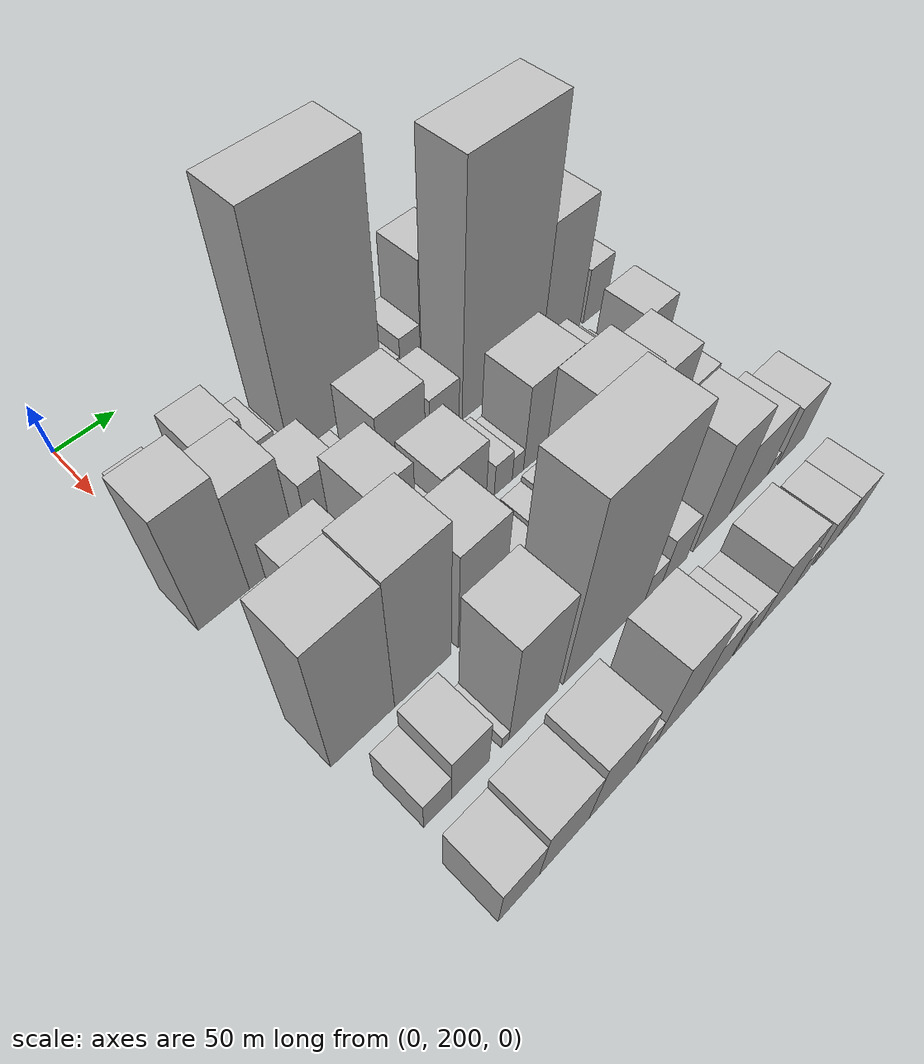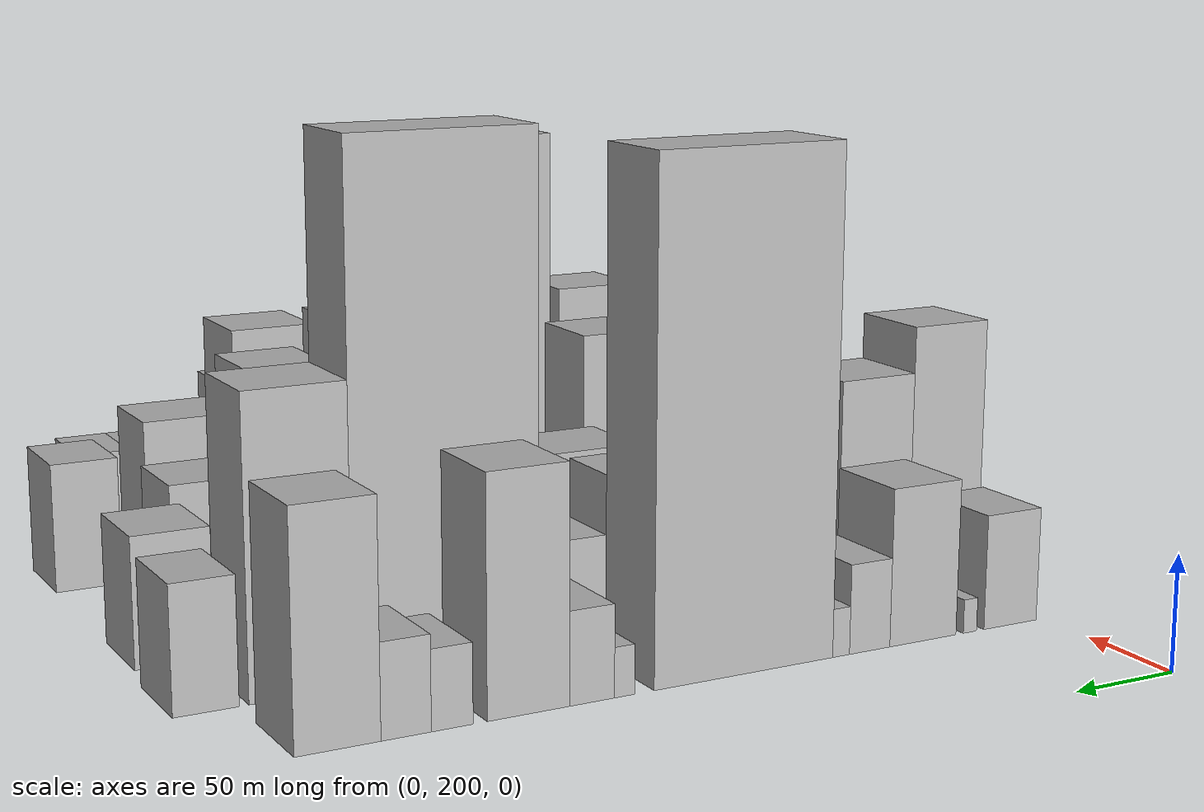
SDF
<sdf version="1.6">
 <world name="default">
  <model name="building_33">
   <static>1</static>
   <pose>100.0000 218.6836 0 0.000000 0.000000 0.000000</pose>
   <link name="link">
    <pose>0 0 25.50 0 0 0</pose>
    <collision name="collision"><geometry><box><size>40.0000 28.7521 51.0000</size></box></geometry></collision>
    <visual name="visual">
     <cast_shadows>0</cast_shadows>
     <geometry><box><size>40.0000 28.7521 51.0000</size></box></geometry>
     <material>
      <script>
       <uri>model://HANNAS_wall/materials/scripts</uri>
       <uri>model://HANNAS_wall/materials/textures</uri>
       <name>vrc/HANNAS_wall</name>
      </script>
     </material>
    </visual>
   </link>
  </model>
  <model name="building_34">
   <static>1</static>
   <pose>100.0000 240.6282 0 0.000000 0.000000 0.000000</pose>
   <link name="link">
    <pose>0 0 7.50 0 0 0</pose>
    <collision name="collision"><geometry><box><size>40.0000 7.1371 15.0000</size></box></geometry></collision>
    <visual name="visual">
     <cast_shadows>0</cast_shadows>
     <geometry><box><size>40.0000 7.1371 15.0000</size></box></geometry>
     <material>
      <script>
       <uri>model://HANNAS_wall/materials/scripts</uri>
       <uri>model://HANNAS_wall/materials/textures</uri>
       <name>vrc/HANNAS_wall</name>
      </script>
     </material>
    </visual>
   </link>
  </model>
  <model name="building_35">
   <static>1</static>
   <pose>100.0000 265.6175 0 0.000000 0.000000 0.000000</pose>
   <link name="link">
    <pose>0 0 34.50 0 0 0</pose>
    <collision name="collision"><geometry><box><size>40.0000 34.8416 69.0000</size></box></geometry></collision>
    <visual name="visual">
     <cast_shadows>0</cast_shadows>
     <geometry><box><size>40.0000 34.8416 69.0000</size></box></geometry>
     <material>
      <script>
       <uri>model://HANNAS_wall/materials/scripts</uri>
       <uri>model://HANNAS_wall/materials/textures</uri>
       <name>vrc/HANNAS_wall</name>
      </script>
     </material>
    </visual>
   </link>
  </model>
  <model name="building_36">
   <static>1</static>
   <pose>100.0000 293.3872 0 0.000000 0.000000 0.000000</pose>
   <link name="link">
    <pose>0 0 19.50 0 0 0</pose>
    <collision name="collision"><geometry><box><size>40.0000 20.6977 39.0000</size></box></geometry></collision>
    <visual name="visual">
     <cast_shadows>0</cast_shadows>
     <geometry><box><size>40.0000 20.6977 39.0000</size></box></geometry>
     <material>
      <script>
       <uri>model://HANNAS_wall/materials/scripts</uri>
       <uri>model://HANNAS_wall/materials/textures</uri>
       <name>vrc/HANNAS_wall</name>
      </script>
     </material>
    </visual>
   </link>
  </model>
  <model name="building_37">
   <static>1</static>
   <pose>100.0000 307.9839 0 0.000000 0.000000 0.000000</pose>
   <link name="link">
    <pose>0 0 10.50 0 0 0</pose>
    <collision name="collision"><geometry><box><size>40.0000 8.4957 21.0000</size></box></geometry></collision>
    <visual name="visual">
     <cast_shadows>0</cast_shadows>
     <geometry><box><size>40.0000 8.4957 21.0000</size></box></geometry>
     <material>
      <script>
       <uri>model://HANNAS_wall/materials/scripts</uri>
       <uri>model://HANNAS_wall/materials/textures</uri>
       <name>vrc/HANNAS_wall</name>
      </script>
     </material>
    </visual>
   </link>
  </model>
  <model name="building_38">
   <static>1</static>
   <pose>100.0000 355.2937 0 0.000000 0.000000 0.000000</pose>
   <link name="link">
    <pose>0 0 108.00 0 0 0</pose>
    <collision name="collision"><geometry><box><size>40.0000 86.1239 216.0000</size></box></geometry></collision>
    <visual name="visual">
     <cast_shadows>0</cast_shadows>
     <geometry><box><size>40.0000 86.1239 216.0000</size></box></geometry>
     <material>
      <script>
       <uri>model://HANNAS_wall/materials/scripts</uri>
       <uri>model://HANNAS_wall/materials/textures</uri>
       <name>vrc/HANNAS_wall</name>
      </script>
     </material>
    </visual>
   </link>
  </model>
  <model name="building_39">
   <static>1</static>
   <pose>100.0000 411.9380 0 0.000000 0.000000 0.000000</pose>
   <link name="link">
    <pose>0 0 10.50 0 0 0</pose>
    <collision name="collision"><geometry><box><size>40.0000 9.1647 21.0000</size></box></geometry></collision>
    <visual name="visual">
     <cast_shadows>0</cast_shadows>
     <geometry><box><size>40.0000 9.1647 21.0000</size></box></geometry>
     <material>
      <script>
       <uri>model://HANNAS_wall/materials/scripts</uri>
       <uri>model://HANNAS_wall/materials/textures</uri>
       <name>vrc/HANNAS_wall</name>
      </script>
     </material>
    </visual>
   </link>
  </model>
  <model name="building_40">
   <static>1</static>
   <pose>100.0000 426.6160 0 0.000000 0.000000 0.000000</pose>
   <link name="link">
    <pose>0 0 19.50 0 0 0</pose>
    <collision name="collision"><geometry><box><size>40.0000 20.1914 39.0000</size></box></geometry></collision>
    <visual name="visual">
     <cast_shadows>0</cast_shadows>
     <geometry><box><size>40.0000 20.1914 39.0000</size></box></geometry>
     <material>
      <script>
       <uri>model://HANNAS_wall/materials/scripts</uri>
       <uri>model://HANNAS_wall/materials/textures</uri>
       <name>vrc/HANNAS_wall</name>
      </script>
     </material>
    </visual>
   </link>
  </model>
  <model name="building_41">
   <static>1</static>
   <pose>100.0000 454.6292 0 0.000000 0.000000 0.000000</pose>
   <link name="link">
    <pose>0 0 49.50 0 0 0</pose>
    <collision name="collision"><geometry><box><size>40.0000 35.8349 99.0000</size></box></geometry></collision>
    <visual name="visual">
     <cast_shadows>0</cast_shadows>
     <geometry><box><size>40.0000 35.8349 99.0000</size></box></geometry>
     <material>
      <script>
       <uri>model://HANNAS_wall/materials/scripts</uri>
       <uri>model://HANNAS_wall/materials/textures</uri>
       <name>vrc/HANNAS_wall</name>
      </script>
     </material>
    </visual>
   </link>
  </model>
  <model name="building_42">
   <static>1</static>
   <pose>100.0000 487.3289 0 0.000000 0.000000 0.000000</pose>
   <link name="link">
    <pose>0 0 16.50 0 0 0</pose>
    <collision name="collision"><geometry><box><size>40.0000 17.5645 33.0000</size></box></geometry></collision>
    <visual name="visual">
     <cast_shadows>0</cast_shadows>
     <geometry><box><size>40.0000 17.5645 33.0000</size></box></geometry>
     <material>
      <script>
       <uri>model://HANNAS_wall/materials/scripts</uri>
       <uri>model://HANNAS_wall/materials/textures</uri>
       <name>vrc/HANNAS_wall</name>
      </script>
     </material>
    </visual>
   </link>
  </model>
  <model name="building_43">
   <static>1</static>
   <pose>100.0000 506.4956 0 0.000000 0.000000 0.000000</pose>
   <link name="link">
    <pose>0 0 19.50 0 0 0</pose>
    <collision name="collision"><geometry><box><size>40.0000 20.7688 39.0000</size></box></geometry></collision>
    <visual name="visual">
     <cast_shadows>0</cast_shadows>
     <geometry><box><size>40.0000 20.7688 39.0000</size></box></geometry>
     <material>
      <script>
       <uri>model://HANNAS_wall/materials/scripts</uri>
       <uri>model://HANNAS_wall/materials/textures</uri>
       <name>vrc/HANNAS_wall</name>
      </script>
     </material>
    </visual>
   </link>
  </model>
  <model name="building_44">
   <static>1</static>
   <pose>100.0000 534.3152 0 0.000000 0.000000 0.000000</pose>
   <link name="link">
    <pose>0 0 48.00 0 0 0</pose>
    <collision name="collision"><geometry><box><size>40.0000 34.8703 96.0000</size></box></geometry></collision>
    <visual name="visual">
     <cast_shadows>0</cast_shadows>
     <geometry><box><size>40.0000 34.8703 96.0000</size></box></geometry>
     <material>
      <script>
       <uri>model://HANNAS_wall/materials/scripts</uri>
       <uri>model://HANNAS_wall/materials/textures</uri>
       <name>vrc/HANNAS_wall</name>
      </script>
     </material>
    </visual>
   </link>
  </model>
  <model name="building_88">
   <static>1</static>
   <pose>160.0000 209.4700 0 0.000000 0.000000 0.000000</pose>
   <link name="link">
    <pose>0 0 61.50 0 0 0</pose>
    <collision name="collision"><geometry><box><size>40.0000 39.6914 123.0000</size></box></geometry></collision>
    <visual name="visual">
     <cast_shadows>0</cast_shadows>
     <geometry><box><size>40.0000 39.6914 123.0000</size></box></geometry>
     <material>
      <script>
       <uri>model://HANNAS_wall/materials/scripts</uri>
       <uri>model://HANNAS_wall/materials/textures</uri>
       <name>vrc/HANNAS_wall</name>
      </script>
     </material>
    </visual>
   </link>
  </model>
  <model name="building_89">
   <static>1</static>
   <pose>160.0000 248.7775 0 0.000000 0.000000 0.000000</pose>
   <link name="link">
    <pose>0 0 51.00 0 0 0</pose>
    <collision name="collision"><geometry><box><size>40.0000 38.9235 102.0000</size></box></geometry></collision>
    <visual name="visual">
     <cast_shadows>0</cast_shadows>
     <geometry><box><size>40.0000 38.9235 102.0000</size></box></geometry>
     <material>
      <script>
       <uri>model://HANNAS_wall/materials/scripts</uri>
       <uri>model://HANNAS_wall/materials/textures</uri>
       <name>vrc/HANNAS_wall</name>
      </script>
     </material>
    </visual>
   </link>
  </model>
  <model name="building_90">
   <static>1</static>
   <pose>160.0000 294.4187 0 0.000000 0.000000 0.000000</pose>
   <link name="link">
    <pose>0 0 31.50 0 0 0</pose>
    <collision name="collision"><geometry><box><size>40.0000 32.3589 63.0000</size></box></geometry></collision>
    <visual name="visual">
     <cast_shadows>0</cast_shadows>
     <geometry><box><size>40.0000 32.3589 63.0000</size></box></geometry>
     <material>
      <script>
       <uri>model://HANNAS_wall/materials/scripts</uri>
       <uri>model://HANNAS_wall/materials/textures</uri>
       <name>vrc/HANNAS_wall</name>
      </script>
     </material>
    </visual>
   </link>
  </model>
  <model name="building_91">
   <static>1</static>
   <pose>160.0000 325.4653 0 0.000000 0.000000 0.000000</pose>
   <link name="link">
    <pose>0 0 15.00 0 0 0</pose>
    <collision name="collision"><geometry><box><size>40.0000 17.7343 30.0000</size></box></geometry></collision>
    <visual name="visual">
     <cast_shadows>0</cast_shadows>
     <geometry><box><size>40.0000 17.7343 30.0000</size></box></geometry>
     <material>
      <script>
       <uri>model://HANNAS_wall/materials/scripts</uri>
       <uri>model://HANNAS_wall/materials/textures</uri>
       <name>vrc/HANNAS_wall</name>
      </script>
     </material>
    </visual>
   </link>
  </model>
  <model name="building_92">
   <static>1</static>
   <pose>160.0000 361.8313 0 0.000000 0.000000 0.000000</pose>
   <link name="link">
    <pose>0 0 36.00 0 0 0</pose>
    <collision name="collision"><geometry><box><size>40.0000 42.9977 72.0000</size></box></geometry></collision>
    <visual name="visual">
     <cast_shadows>0</cast_shadows>
     <geometry><box><size>40.0000 42.9977 72.0000</size></box></geometry>
     <material>
      <script>
       <uri>model://HANNAS_wall/materials/scripts</uri>
       <uri>model://HANNAS_wall/materials/textures</uri>
       <name>vrc/HANNAS_wall</name>
      </script>
     </material>
    </visual>
   </link>
  </model>
  <model name="building_93">
   <static>1</static>
   <pose>160.0000 401.6939 0 0.000000 0.000000 0.000000</pose>
   <link name="link">
    <pose>0 0 24.00 0 0 0</pose>
    <collision name="collision"><geometry><box><size>40.0000 28.7275 48.0000</size></box></geometry></collision>
    <visual name="visual">
     <cast_shadows>0</cast_shadows>
     <geometry><box><size>40.0000 28.7275 48.0000</size></box></geometry>
     <material>
      <script>
       <uri>model://HANNAS_wall/materials/scripts</uri>
       <uri>model://HANNAS_wall/materials/textures</uri>
       <name>vrc/HANNAS_wall</name>
      </script>
     </material>
    </visual>
   </link>
  </model>
  <model name="building_94">
   <static>1</static>
   <pose>160.0000 461.1243 0 0.000000 0.000000 0.000000</pose>
   <link name="link">
    <pose>0 0 111.00 0 0 0</pose>
    <collision name="collision"><geometry><box><size>40.0000 84.1333 222.0000</size></box></geometry></collision>
    <visual name="visual">
     <cast_shadows>0</cast_shadows>
     <geometry><box><size>40.0000 84.1333 222.0000</size></box></geometry>
     <material>
      <script>
       <uri>model://HANNAS_wall/materials/scripts</uri>
       <uri>model://HANNAS_wall/materials/textures</uri>
       <name>vrc/HANNAS_wall</name>
      </script>
     </material>
    </visual>
   </link>
  </model>
  <model name="building_95">
   <static>1</static>
   <pose>160.0000 525.2497 0 0.000000 0.000000 0.000000</pose>
   <link name="link">
    <pose>0 0 63.00 0 0 0</pose>
    <collision name="collision"><geometry><box><size>40.0000 44.1175 126.0000</size></box></geometry></collision>
    <visual name="visual">
     <cast_shadows>0</cast_shadows>
     <geometry><box><size>40.0000 44.1175 126.0000</size></box></geometry>
     <material>
      <script>
       <uri>model://HANNAS_wall/materials/scripts</uri>
       <uri>model://HANNAS_wall/materials/textures</uri>
       <name>vrc/HANNAS_wall</name>
      </script>
     </material>
    </visual>
   </link>
  </model>
  <model name="building_96">
   <static>1</static>
   <pose>160.0000 564.9026 0 0.000000 0.000000 0.000000</pose>
   <link name="link">
    <pose>0 0 27.00 0 0 0</pose>
    <collision name="collision"><geometry><box><size>40.0000 27.1882 54.0000</size></box></geometry></collision>
    <visual name="visual">
     <cast_shadows>0</cast_shadows>
     <geometry><box><size>40.0000 27.1882 54.0000</size></box></geometry>
     <material>
      <script>
       <uri>model://HANNAS_wall/materials/scripts</uri>
       <uri>model://HANNAS_wall/materials/textures</uri>
       <name>vrc/HANNAS_wall</name>
      </script>
     </material>
    </visual>
   </link>
  </model>
  <model name="building_142">
   <static>1</static>
   <pose>220.0000 221.8483 0 0.000000 0.000000 0.000000</pose>
   <link name="link">
    <pose>0 0 9.00 0 0 0</pose>
    <collision name="collision"><geometry><box><size>40.0000 8.2182 18.0000</size></box></geometry></collision>
    <visual name="visual">
     <cast_shadows>0</cast_shadows>
     <geometry><box><size>40.0000 8.2182 18.0000</size></box></geometry>
     <material>
      <script>
       <uri>model://HANNAS_wall/materials/scripts</uri>
       <uri>model://HANNAS_wall/materials/textures</uri>
       <name>vrc/HANNAS_wall</name>
      </script>
     </material>
    </visual>
   </link>
  </model>
  <model name="building_143">
   <static>1</static>
   <pose>220.0000 254.0555 0 0.000000 0.000000 0.000000</pose>
   <link name="link">
    <pose>0 0 37.50 0 0 0</pose>
    <collision name="collision"><geometry><box><size>40.0000 42.1961 75.0000</size></box></geometry></collision>
    <visual name="visual">
     <cast_shadows>0</cast_shadows>
     <geometry><box><size>40.0000 42.1961 75.0000</size></box></geometry>
     <material>
      <script>
       <uri>model://HANNAS_wall/materials/scripts</uri>
       <uri>model://HANNAS_wall/materials/textures</uri>
       <name>vrc/HANNAS_wall</name>
      </script>
     </material>
    </visual>
   </link>
  </model>
  <model name="building_144">
   <static>1</static>
   <pose>220.0000 300.3810 0 0.000000 0.000000 0.000000</pose>
   <link name="link">
    <pose>0 0 54.00 0 0 0</pose>
    <collision name="collision"><geometry><box><size>40.0000 34.4549 108.0000</size></box></geometry></collision>
    <visual name="visual">
     <cast_shadows>0</cast_shadows>
     <geometry><box><size>40.0000 34.4549 108.0000</size></box></geometry>
     <material>
      <script>
       <uri>model://HANNAS_wall/materials/scripts</uri>
       <uri>model://HANNAS_wall/materials/textures</uri>
       <name>vrc/HANNAS_wall</name>
      </script>
     </material>
    </visual>
   </link>
  </model>
  <model name="building_145">
   <static>1</static>
   <pose>220.0000 328.3311 0 0.000000 0.000000 0.000000</pose>
   <link name="link">
    <pose>0 0 21.00 0 0 0</pose>
    <collision name="collision"><geometry><box><size>40.0000 21.4453 42.0000</size></box></geometry></collision>
    <visual name="visual">
     <cast_shadows>0</cast_shadows>
     <geometry><box><size>40.0000 21.4453 42.0000</size></box></geometry>
     <material>
      <script>
       <uri>model://HANNAS_wall/materials/scripts</uri>
       <uri>model://HANNAS_wall/materials/textures</uri>
       <name>vrc/HANNAS_wall</name>
      </script>
     </material>
    </visual>
   </link>
  </model>
  <model name="building_146">
   <static>1</static>
   <pose>220.0000 359.7139 0 0.000000 0.000000 0.000000</pose>
   <link name="link">
    <pose>0 0 34.50 0 0 0</pose>
    <collision name="collision"><geometry><box><size>40.0000 41.3204 69.0000</size></box></geometry></collision>
    <visual name="visual">
     <cast_shadows>0</cast_shadows>
     <geometry><box><size>40.0000 41.3204 69.0000</size></box></geometry>
     <material>
      <script>
       <uri>model://HANNAS_wall/materials/scripts</uri>
       <uri>model://HANNAS_wall/materials/textures</uri>
       <name>vrc/HANNAS_wall</name>
      </script>
     </material>
    </visual>
   </link>
  </model>
  <model name="building_147">
   <static>1</static>
   <pose>220.0000 397.2193 0 0.000000 0.000000 0.000000</pose>
   <link name="link">
    <pose>0 0 16.50 0 0 0</pose>
    <collision name="collision"><geometry><box><size>40.0000 17.6904 33.0000</size></box></geometry></collision>
    <visual name="visual">
     <cast_shadows>0</cast_shadows>
     <geometry><box><size>40.0000 17.6904 33.0000</size></box></geometry>
     <material>
      <script>
       <uri>model://HANNAS_wall/materials/scripts</uri>
       <uri>model://HANNAS_wall/materials/textures</uri>
       <name>vrc/HANNAS_wall</name>
      </script>
     </material>
    </visual>
   </link>
  </model>
  <model name="building_148">
   <static>1</static>
   <pose>220.0000 411.6757 0 0.000000 0.000000 0.000000</pose>
   <link name="link">
    <pose>0 0 12.00 0 0 0</pose>
    <collision name="collision"><geometry><box><size>40.0000 11.2225 24.0000</size></box></geometry></collision>
    <visual name="visual">
     <cast_shadows>0</cast_shadows>
     <geometry><box><size>40.0000 11.2225 24.0000</size></box></geometry>
     <material>
      <script>
       <uri>model://HANNAS_wall/materials/scripts</uri>
       <uri>model://HANNAS_wall/materials/textures</uri>
       <name>vrc/HANNAS_wall</name>
      </script>
     </material>
    </visual>
   </link>
  </model>
  <model name="building_149">
   <static>1</static>
   <pose>220.0000 442.6107 0 0.000000 0.000000 0.000000</pose>
   <link name="link">
    <pose>0 0 43.50 0 0 0</pose>
    <collision name="collision"><geometry><box><size>40.0000 50.6474 87.0000</size></box></geometry></collision>
    <visual name="visual">
     <cast_shadows>0</cast_shadows>
     <geometry><box><size>40.0000 50.6474 87.0000</size></box></geometry>
     <material>
      <script>
       <uri>model://HANNAS_wall/materials/scripts</uri>
       <uri>model://HANNAS_wall/materials/textures</uri>
       <name>vrc/HANNAS_wall</name>
      </script>
     </material>
    </visual>
   </link>
  </model>
  <model name="building_150">
   <static>1</static>
   <pose>220.0000 484.1949 0 0.000000 0.000000 0.000000</pose>
   <link name="link">
    <pose>0 0 28.50 0 0 0</pose>
    <collision name="collision"><geometry><box><size>40.0000 32.5212 57.0000</size></box></geometry></collision>
    <visual name="visual">
     <cast_shadows>0</cast_shadows>
     <geometry><box><size>40.0000 32.5212 57.0000</size></box></geometry>
     <material>
      <script>
       <uri>model://HANNAS_wall/materials/scripts</uri>
       <uri>model://HANNAS_wall/materials/textures</uri>
       <name>vrc/HANNAS_wall</name>
      </script>
     </material>
    </visual>
   </link>
  </model>
  <model name="building_151">
   <static>1</static>
   <pose>220.0000 509.6983 0 0.000000 0.000000 0.000000</pose>
   <link name="link">
    <pose>0 0 18.00 0 0 0</pose>
    <collision name="collision"><geometry><box><size>40.0000 18.4855 36.0000</size></box></geometry></collision>
    <visual name="visual">
     <cast_shadows>0</cast_shadows>
     <geometry><box><size>40.0000 18.4855 36.0000</size></box></geometry>
     <material>
      <script>
       <uri>model://HANNAS_wall/materials/scripts</uri>
       <uri>model://HANNAS_wall/materials/textures</uri>
       <name>vrc/HANNAS_wall</name>
      </script>
     </material>
    </visual>
   </link>
  </model>
  <model name="building_152">
   <static>1</static>
   <pose>220.0000 524.8122 0 0.000000 0.000000 0.000000</pose>
   <link name="link">
    <pose>0 0 12.00 0 0 0</pose>
    <collision name="collision"><geometry><box><size>40.0000 11.7424 24.0000</size></box></geometry></collision>
    <visual name="visual">
     <cast_shadows>0</cast_shadows>
     <geometry><box><size>40.0000 11.7424 24.0000</size></box></geometry>
     <material>
      <script>
       <uri>model://HANNAS_wall/materials/scripts</uri>
       <uri>model://HANNAS_wall/materials/textures</uri>
       <name>vrc/HANNAS_wall</name>
      </script>
     </material>
    </visual>
   </link>
  </model>
  <model name="building_153">
   <static>1</static>
   <pose>220.0000 557.7798 0 0.000000 0.000000 0.000000</pose>
   <link name="link">
    <pose>0 0 28.50 0 0 0</pose>
    <collision name="collision"><geometry><box><size>40.0000 34.1929 57.0000</size></box></geometry></collision>
    <visual name="visual">
     <cast_shadows>0</cast_shadows>
     <geometry><box><size>40.0000 34.1929 57.0000</size></box></geometry>
     <material>
      <script>
       <uri>model://HANNAS_wall/materials/scripts</uri>
       <uri>model://HANNAS_wall/materials/textures</uri>
       <name>vrc/HANNAS_wall</name>
      </script>
     </material>
    </visual>
   </link>
  </model>
  <model name="building_194">
   <static>1</static>
   <pose>280.0000 216.1679 0 0.000000 0.000000 0.000000</pose>
   <link name="link">
    <pose>0 0 73.50 0 0 0</pose>
    <collision name="collision"><geometry><box><size>40.0000 49.0599 147.0000</size></box></geometry></collision>
    <visual name="visual">
     <cast_shadows>0</cast_shadows>
     <geometry><box><size>40.0000 49.0599 147.0000</size></box></geometry>
     <material>
      <script>
       <uri>model://HANNAS_wall/materials/scripts</uri>
       <uri>model://HANNAS_wall/materials/textures</uri>
       <name>vrc/HANNAS_wall</name>
      </script>
     </material>
    </visual>
   </link>
  </model>
  <model name="building_195">
   <static>1</static>
   <pose>280.0000 263.8542 0 0.000000 0.000000 0.000000</pose>
   <link name="link">
    <pose>0 0 75.00 0 0 0</pose>
    <collision name="collision"><geometry><box><size>40.0000 46.3127 150.0000</size></box></geometry></collision>
    <visual name="visual">
     <cast_shadows>0</cast_shadows>
     <geometry><box><size>40.0000 46.3127 150.0000</size></box></geometry>
     <material>
      <script>
       <uri>model://HANNAS_wall/materials/scripts</uri>
       <uri>model://HANNAS_wall/materials/textures</uri>
       <name>vrc/HANNAS_wall</name>
      </script>
     </material>
    </visual>
   </link>
  </model>
  <model name="building_196">
   <static>1</static>
   <pose>280.0000 313.0113 0 0.000000 0.000000 0.000000</pose>
   <link name="link">
    <pose>0 0 54.00 0 0 0</pose>
    <collision name="collision"><geometry><box><size>40.0000 40.0014 108.0000</size></box></geometry></collision>
    <visual name="visual">
     <cast_shadows>0</cast_shadows>
     <geometry><box><size>40.0000 40.0014 108.0000</size></box></geometry>
     <material>
      <script>
       <uri>model://HANNAS_wall/materials/scripts</uri>
       <uri>model://HANNAS_wall/materials/textures</uri>
       <name>vrc/HANNAS_wall</name>
      </script>
     </material>
    </visual>
   </link>
  </model>
  <model name="building_197">
   <static>1</static>
   <pose>280.0000 346.7867 0 0.000000 0.000000 0.000000</pose>
   <link name="link">
    <pose>0 0 25.50 0 0 0</pose>
    <collision name="collision"><geometry><box><size>40.0000 27.5494 51.0000</size></box></geometry></collision>
    <visual name="visual">
     <cast_shadows>0</cast_shadows>
     <geometry><box><size>40.0000 27.5494 51.0000</size></box></geometry>
     <material>
      <script>
       <uri>model://HANNAS_wall/materials/scripts</uri>
       <uri>model://HANNAS_wall/materials/textures</uri>
       <name>vrc/HANNAS_wall</name>
      </script>
     </material>
    </visual>
   </link>
  </model>
  <model name="building_198">
   <static>1</static>
   <pose>280.0000 363.6494 0 0.000000 0.000000 0.000000</pose>
   <link name="link">
    <pose>0 0 7.50 0 0 0</pose>
    <collision name="collision"><geometry><box><size>40.0000 6.1761 15.0000</size></box></geometry></collision>
    <visual name="visual">
     <cast_shadows>0</cast_shadows>
     <geometry><box><size>40.0000 6.1761 15.0000</size></box></geometry>
     <material>
      <script>
       <uri>model://HANNAS_wall/materials/scripts</uri>
       <uri>model://HANNAS_wall/materials/textures</uri>
       <name>vrc/HANNAS_wall</name>
      </script>
     </material>
    </visual>
   </link>
  </model>
  <model name="building_199">
   <static>1</static>
   <pose>280.0000 380.2682 0 0.000000 0.000000 0.000000</pose>
   <link name="link">
    <pose>0 0 18.00 0 0 0</pose>
    <collision name="collision"><geometry><box><size>40.0000 19.0615 36.0000</size></box></geometry></collision>
    <visual name="visual">
     <cast_shadows>0</cast_shadows>
     <geometry><box><size>40.0000 19.0615 36.0000</size></box></geometry>
     <material>
      <script>
       <uri>model://HANNAS_wall/materials/scripts</uri>
       <uri>model://HANNAS_wall/materials/textures</uri>
       <name>vrc/HANNAS_wall</name>
      </script>
     </material>
    </visual>
   </link>
  </model>
  <model name="building_200">
   <static>1</static>
   <pose>280.0000 401.0142 0 0.000000 0.000000 0.000000</pose>
   <link name="link">
    <pose>0 0 21.00 0 0 0</pose>
    <collision name="collision"><geometry><box><size>40.0000 22.4304 42.0000</size></box></geometry></collision>
    <visual name="visual">
     <cast_shadows>0</cast_shadows>
     <geometry><box><size>40.0000 22.4304 42.0000</size></box></geometry>
     <material>
      <script>
       <uri>model://HANNAS_wall/materials/scripts</uri>
       <uri>model://HANNAS_wall/materials/textures</uri>
       <name>vrc/HANNAS_wall</name>
      </script>
     </material>
    </visual>
   </link>
  </model>
  <model name="building_201">
   <static>1</static>
   <pose>280.0000 435.7184 0 0.000000 0.000000 0.000000</pose>
   <link name="link">
    <pose>0 0 63.00 0 0 0</pose>
    <collision name="collision"><geometry><box><size>40.0000 46.9782 126.0000</size></box></geometry></collision>
    <visual name="visual">
     <cast_shadows>0</cast_shadows>
     <geometry><box><size>40.0000 46.9782 126.0000</size></box></geometry>
     <material>
      <script>
       <uri>model://HANNAS_wall/materials/scripts</uri>
       <uri>model://HANNAS_wall/materials/textures</uri>
       <name>vrc/HANNAS_wall</name>
      </script>
     </material>
    </visual>
   </link>
  </model>
  <model name="building_202">
   <static>1</static>
   <pose>280.0000 483.1731 0 0.000000 0.000000 0.000000</pose>
   <link name="link">
    <pose>0 0 54.00 0 0 0</pose>
    <collision name="collision"><geometry><box><size>40.0000 37.9311 108.0000</size></box></geometry></collision>
    <visual name="visual">
     <cast_shadows>0</cast_shadows>
     <geometry><box><size>40.0000 37.9311 108.0000</size></box></geometry>
     <material>
      <script>
       <uri>model://HANNAS_wall/materials/scripts</uri>
       <uri>model://HANNAS_wall/materials/textures</uri>
       <name>vrc/HANNAS_wall</name>
      </script>
     </material>
    </visual>
   </link>
  </model>
  <model name="building_203">
   <static>1</static>
   <pose>280.0000 522.8885 0 0.000000 0.000000 0.000000</pose>
   <link name="link">
    <pose>0 0 30.00 0 0 0</pose>
    <collision name="collision"><geometry><box><size>40.0000 31.4997 60.0000</size></box></geometry></collision>
    <visual name="visual">
     <cast_shadows>0</cast_shadows>
     <geometry><box><size>40.0000 31.4997 60.0000</size></box></geometry>
     <material>
      <script>
       <uri>model://HANNAS_wall/materials/scripts</uri>
       <uri>model://HANNAS_wall/materials/textures</uri>
       <name>vrc/HANNAS_wall</name>
      </script>
     </material>
    </visual>
   </link>
  </model>
  <model name="building_250">
   <static>1</static>
   <pose>340.0000 216.1591 0 0.000000 0.000000 0.000000</pose>
   <link name="link">
    <pose>0 0 18.00 0 0 0</pose>
    <collision name="collision"><geometry><box><size>40.0000 21.1160 36.0000</size></box></geometry></collision>
    <visual name="visual">
     <cast_shadows>0</cast_shadows>
     <geometry><box><size>40.0000 21.1160 36.0000</size></box></geometry>
     <material>
      <script>
       <uri>model://HANNAS_wall/materials/scripts</uri>
       <uri>model://HANNAS_wall/materials/textures</uri>
       <name>vrc/HANNAS_wall</name>
      </script>
     </material>
    </visual>
   </link>
  </model>
  <model name="building_251">
   <static>1</static>
   <pose>340.0000 241.6755 0 0.000000 0.000000 0.000000</pose>
   <link name="link">
    <pose>0 0 28.50 0 0 0</pose>
    <collision name="collision"><geometry><box><size>40.0000 29.9167 57.0000</size></box></geometry></collision>
    <visual name="visual">
     <cast_shadows>0</cast_shadows>
     <geometry><box><size>40.0000 29.9167 57.0000</size></box></geometry>
     <material>
      <script>
       <uri>model://HANNAS_wall/materials/scripts</uri>
       <uri>model://HANNAS_wall/materials/textures</uri>
       <name>vrc/HANNAS_wall</name>
      </script>
     </material>
    </visual>
   </link>
  </model>
  <model name="building_252">
   <static>1</static>
   <pose>340.0000 269.7279 0 0.000000 0.000000 0.000000</pose>
   <link name="link">
    <pose>0 0 7.50 0 0 0</pose>
    <collision name="collision"><geometry><box><size>40.0000 6.1880 15.0000</size></box></geometry></collision>
    <visual name="visual">
     <cast_shadows>0</cast_shadows>
     <geometry><box><size>40.0000 6.1880 15.0000</size></box></geometry>
     <material>
      <script>
       <uri>model://HANNAS_wall/materials/scripts</uri>
       <uri>model://HANNAS_wall/materials/textures</uri>
       <name>vrc/HANNAS_wall</name>
      </script>
     </material>
    </visual>
   </link>
  </model>
  <model name="building_253">
   <static>1</static>
   <pose>340.0000 293.8194 0 0.000000 0.000000 0.000000</pose>
   <link name="link">
    <pose>0 0 60.00 0 0 0</pose>
    <collision name="collision"><geometry><box><size>40.0000 41.9950 120.0000</size></box></geometry></collision>
    <visual name="visual">
     <cast_shadows>0</cast_shadows>
     <geometry><box><size>40.0000 41.9950 120.0000</size></box></geometry>
     <material>
      <script>
       <uri>model://HANNAS_wall/materials/scripts</uri>
       <uri>model://HANNAS_wall/materials/textures</uri>
       <name>vrc/HANNAS_wall</name>
      </script>
     </material>
    </visual>
   </link>
  </model>
  <model name="building_254">
   <static>1</static>
   <pose>340.0000 358.3459 0 0.000000 0.000000 0.000000</pose>
   <link name="link">
    <pose>0 0 99.00 0 0 0</pose>
    <collision name="collision"><geometry><box><size>40.0000 77.0580 198.0000</size></box></geometry></collision>
    <visual name="visual">
     <cast_shadows>0</cast_shadows>
     <geometry><box><size>40.0000 77.0580 198.0000</size></box></geometry>
     <material>
      <script>
       <uri>model://HANNAS_wall/materials/scripts</uri>
       <uri>model://HANNAS_wall/materials/textures</uri>
       <name>vrc/HANNAS_wall</name>
      </script>
     </material>
    </visual>
   </link>
  </model>
  <model name="building_255">
   <static>1</static>
   <pose>340.0000 405.4837 0 0.000000 0.000000 0.000000</pose>
   <link name="link">
    <pose>0 0 15.00 0 0 0</pose>
    <collision name="collision"><geometry><box><size>40.0000 17.2176 30.0000</size></box></geometry></collision>
    <visual name="visual">
     <cast_shadows>0</cast_shadows>
     <geometry><box><size>40.0000 17.2176 30.0000</size></box></geometry>
     <material>
      <script>
       <uri>model://HANNAS_wall/materials/scripts</uri>
       <uri>model://HANNAS_wall/materials/textures</uri>
       <name>vrc/HANNAS_wall</name>
      </script>
     </material>
    </visual>
   </link>
  </model>
  <model name="building_256">
   <static>1</static>
   <pose>340.0000 426.9658 0 0.000000 0.000000 0.000000</pose>
   <link name="link">
    <pose>0 0 25.50 0 0 0</pose>
    <collision name="collision"><geometry><box><size>40.0000 25.7465 51.0000</size></box></geometry></collision>
    <visual name="visual">
     <cast_shadows>0</cast_shadows>
     <geometry><box><size>40.0000 25.7465 51.0000</size></box></geometry>
     <material>
      <script>
       <uri>model://HANNAS_wall/materials/scripts</uri>
       <uri>model://HANNAS_wall/materials/textures</uri>
       <name>vrc/HANNAS_wall</name>
      </script>
     </material>
    </visual>
   </link>
  </model>
  <model name="building_257">
   <static>1</static>
   <pose>340.0000 466.8127 0 0.000000 0.000000 0.000000</pose>
   <link name="link">
    <pose>0 0 57.00 0 0 0</pose>
    <collision name="collision"><geometry><box><size>40.0000 39.9473 114.0000</size></box></geometry></collision>
    <visual name="visual">
     <cast_shadows>0</cast_shadows>
     <geometry><box><size>40.0000 39.9473 114.0000</size></box></geometry>
     <material>
      <script>
       <uri>model://HANNAS_wall/materials/scripts</uri>
       <uri>model://HANNAS_wall/materials/textures</uri>
       <name>vrc/HANNAS_wall</name>
      </script>
     </material>
    </visual>
   </link>
  </model>
  <model name="building_258">
   <static>1</static>
   <pose>340.0000 508.7652 0 0.000000 0.000000 0.000000</pose>
   <link name="link">
    <pose>0 0 37.50 0 0 0</pose>
    <collision name="collision"><geometry><box><size>40.0000 43.9578 75.0000</size></box></geometry></collision>
    <visual name="visual">
     <cast_shadows>0</cast_shadows>
     <geometry><box><size>40.0000 43.9578 75.0000</size></box></geometry>
     <material>
      <script>
       <uri>model://HANNAS_wall/materials/scripts</uri>
       <uri>model://HANNAS_wall/materials/textures</uri>
       <name>vrc/HANNAS_wall</name>
      </script>
     </material>
    </visual>
   </link>
  </model>
  <model name="building_259">
   <static>1</static>
   <pose>340.0000 535.1755 0 0.000000 0.000000 0.000000</pose>
   <link name="link">
    <pose>0 0 9.00 0 0 0</pose>
    <collision name="collision"><geometry><box><size>40.0000 8.8627 18.0000</size></box></geometry></collision>
    <visual name="visual">
     <cast_shadows>0</cast_shadows>
     <geometry><box><size>40.0000 8.8627 18.0000</size></box></geometry>
     <material>
      <script>
       <uri>model://HANNAS_wall/materials/scripts</uri>
       <uri>model://HANNAS_wall/materials/textures</uri>
       <name>vrc/HANNAS_wall</name>
      </script>
     </material>
    </visual>
   </link>
  </model>
  <model name="building_260">
   <static>1</static>
   <pose>340.0000 559.1100 0 0.000000 0.000000 0.000000</pose>
   <link name="link">
    <pose>0 0 30.00 0 0 0</pose>
    <collision name="collision"><geometry><box><size>40.0000 31.0065 60.0000</size></box></geometry></collision>
    <visual name="visual">
     <cast_shadows>0</cast_shadows>
     <geometry><box><size>40.0000 31.0065 60.0000</size></box></geometry>
     <material>
      <script>
       <uri>model://HANNAS_wall/materials/scripts</uri>
       <uri>model://HANNAS_wall/materials/textures</uri>
       <name>vrc/HANNAS_wall</name>
      </script>
     </material>
    </visual>
   </link>
  </model>
  <model name="building_302">
   <static>1</static>
   <pose>400.0000 215.6454 0 0.000000 0.000000 0.000000</pose>
   <link name="link">
    <pose>0 0 28.50 0 0 0</pose>
    <collision name="collision"><geometry><box><size>40.0000 31.5820 57.0000</size></box></geometry></collision>
    <visual name="visual">
     <cast_shadows>0</cast_shadows>
     <geometry><box><size>40.0000 31.5820 57.0000</size></box></geometry>
     <material>
      <script>
       <uri>model://HANNAS_wall/materials/scripts</uri>
       <uri>model://HANNAS_wall/materials/textures</uri>
       <name>vrc/HANNAS_wall</name>
      </script>
     </material>
    </visual>
   </link>
  </model>
  <model name="building_303">
   <static>1</static>
   <pose>400.0000 251.4895 0 0.000000 0.000000 0.000000</pose>
   <link name="link">
    <pose>0 0 34.50 0 0 0</pose>
    <collision name="collision"><geometry><box><size>40.0000 40.1062 69.0000</size></box></geometry></collision>
    <visual name="visual">
     <cast_shadows>0</cast_shadows>
     <geometry><box><size>40.0000 40.1062 69.0000</size></box></geometry>
     <material>
      <script>
       <uri>model://HANNAS_wall/materials/scripts</uri>
       <uri>model://HANNAS_wall/materials/textures</uri>
       <name>vrc/HANNAS_wall</name>
      </script>
     </material>
    </visual>
   </link>
  </model>
  <model name="building_304">
   <static>1</static>
   <pose>400.0000 292.0637 0 0.000000 0.000000 0.000000</pose>
   <link name="link">
    <pose>0 0 40.50 0 0 0</pose>
    <collision name="collision"><geometry><box><size>40.0000 41.0422 81.0000</size></box></geometry></collision>
    <visual name="visual">
     <cast_shadows>0</cast_shadows>
     <geometry><box><size>40.0000 41.0422 81.0000</size></box></geometry>
     <material>
      <script>
       <uri>model://HANNAS_wall/materials/scripts</uri>
       <uri>model://HANNAS_wall/materials/textures</uri>
       <name>vrc/HANNAS_wall</name>
      </script>
     </material>
    </visual>
   </link>
  </model>
  <model name="building_305">
   <static>1</static>
   <pose>400.0000 321.3193 0 0.000000 0.000000 0.000000</pose>
   <link name="link">
    <pose>0 0 16.50 0 0 0</pose>
    <collision name="collision"><geometry><box><size>40.0000 17.4691 33.0000</size></box></geometry></collision>
    <visual name="visual">
     <cast_shadows>0</cast_shadows>
     <geometry><box><size>40.0000 17.4691 33.0000</size></box></geometry>
     <material>
      <script>
       <uri>model://HANNAS_wall/materials/scripts</uri>
       <uri>model://HANNAS_wall/materials/textures</uri>
       <name>vrc/HANNAS_wall</name>
      </script>
     </material>
    </visual>
   </link>
  </model>
  <model name="building_306">
   <static>1</static>
   <pose>400.0000 350.2452 0 0.000000 0.000000 0.000000</pose>
   <link name="link">
    <pose>0 0 51.00 0 0 0</pose>
    <collision name="collision"><geometry><box><size>40.0000 40.3827 102.0000</size></box></geometry></collision>
    <visual name="visual">
     <cast_shadows>0</cast_shadows>
     <geometry><box><size>40.0000 40.3827 102.0000</size></box></geometry>
     <material>
      <script>
       <uri>model://HANNAS_wall/materials/scripts</uri>
       <uri>model://HANNAS_wall/materials/textures</uri>
       <name>vrc/HANNAS_wall</name>
      </script>
     </material>
    </visual>
   </link>
  </model>
  <model name="building_307">
   <static>1</static>
   <pose>400.0000 386.4615 0 0.000000 0.000000 0.000000</pose>
   <link name="link">
    <pose>0 0 31.50 0 0 0</pose>
    <collision name="collision"><geometry><box><size>40.0000 32.0497 63.0000</size></box></geometry></collision>
    <visual name="visual">
     <cast_shadows>0</cast_shadows>
     <geometry><box><size>40.0000 32.0497 63.0000</size></box></geometry>
     <material>
      <script>
       <uri>model://HANNAS_wall/materials/scripts</uri>
       <uri>model://HANNAS_wall/materials/textures</uri>
       <name>vrc/HANNAS_wall</name>
      </script>
     </material>
    </visual>
   </link>
  </model>
  <model name="building_308">
   <static>1</static>
   <pose>400.0000 418.2034 0 0.000000 0.000000 0.000000</pose>
   <link name="link">
    <pose>0 0 22.50 0 0 0</pose>
    <collision name="collision"><geometry><box><size>40.0000 25.4343 45.0000</size></box></geometry></collision>
    <visual name="visual">
     <cast_shadows>0</cast_shadows>
     <geometry><box><size>40.0000 25.4343 45.0000</size></box></geometry>
     <material>
      <script>
       <uri>model://HANNAS_wall/materials/scripts</uri>
       <uri>model://HANNAS_wall/materials/textures</uri>
       <name>vrc/HANNAS_wall</name>
      </script>
     </material>
    </visual>
   </link>
  </model>
  <model name="building_309">
   <static>1</static>
   <pose>400.0000 450.7645 0 0.000000 0.000000 0.000000</pose>
   <link name="link">
    <pose>0 0 37.50 0 0 0</pose>
    <collision name="collision"><geometry><box><size>40.0000 39.6878 75.0000</size></box></geometry></collision>
    <visual name="visual">
     <cast_shadows>0</cast_shadows>
     <geometry><box><size>40.0000 39.6878 75.0000</size></box></geometry>
     <material>
      <script>
       <uri>model://HANNAS_wall/materials/scripts</uri>
       <uri>model://HANNAS_wall/materials/textures</uri>
       <name>vrc/HANNAS_wall</name>
      </script>
     </material>
    </visual>
   </link>
  </model>
  <model name="building_310">
   <static>1</static>
   <pose>400.0000 478.1933 0 0.000000 0.000000 0.000000</pose>
   <link name="link">
    <pose>0 0 15.00 0 0 0</pose>
    <collision name="collision"><geometry><box><size>40.0000 15.1699 30.0000</size></box></geometry></collision>
    <visual name="visual">
     <cast_shadows>0</cast_shadows>
     <geometry><box><size>40.0000 15.1699 30.0000</size></box></geometry>
     <material>
      <script>
       <uri>model://HANNAS_wall/materials/scripts</uri>
       <uri>model://HANNAS_wall/materials/textures</uri>
       <name>vrc/HANNAS_wall</name>
      </script>
     </material>
    </visual>
   </link>
  </model>
  <model name="building_311">
   <static>1</static>
   <pose>400.0000 506.4683 0 0.000000 0.000000 0.000000</pose>
   <link name="link">
    <pose>0 0 24.00 0 0 0</pose>
    <collision name="collision"><geometry><box><size>40.0000 27.3800 48.0000</size></box></geometry></collision>
    <visual name="visual">
     <cast_shadows>0</cast_shadows>
     <geometry><box><size>40.0000 27.3800 48.0000</size></box></geometry>
     <material>
      <script>
       <uri>model://HANNAS_wall/materials/scripts</uri>
       <uri>model://HANNAS_wall/materials/textures</uri>
       <name>vrc/HANNAS_wall</name>
      </script>
     </material>
    </visual>
   </link>
  </model>
  <model name="building_312">
   <static>1</static>
   <pose>400.0000 532.8747 0 0.000000 0.000000 0.000000</pose>
   <link name="link">
    <pose>0 0 24.00 0 0 0</pose>
    <collision name="collision"><geometry><box><size>40.0000 25.4329 48.0000</size></box></geometry></collision>
    <visual name="visual">
     <cast_shadows>0</cast_shadows>
     <geometry><box><size>40.0000 25.4329 48.0000</size></box></geometry>
     <material>
      <script>
       <uri>model://HANNAS_wall/materials/scripts</uri>
       <uri>model://HANNAS_wall/materials/textures</uri>
       <name>vrc/HANNAS_wall</name>
      </script>
     </material>
    </visual>
   </link>
  </model>
 </world>
</sdf>
